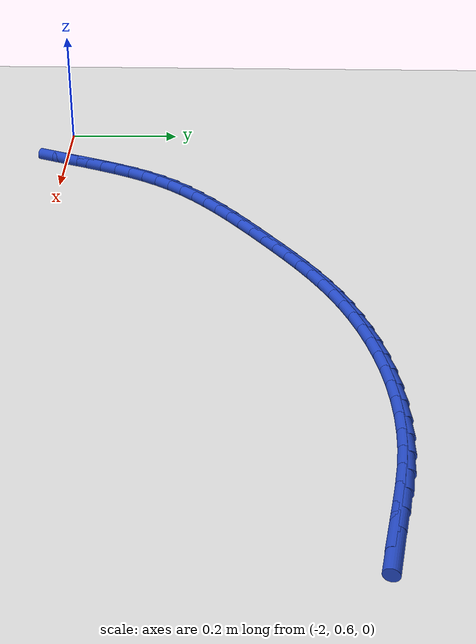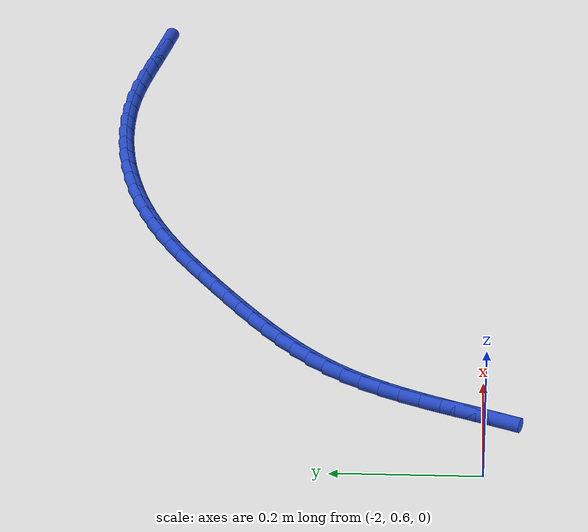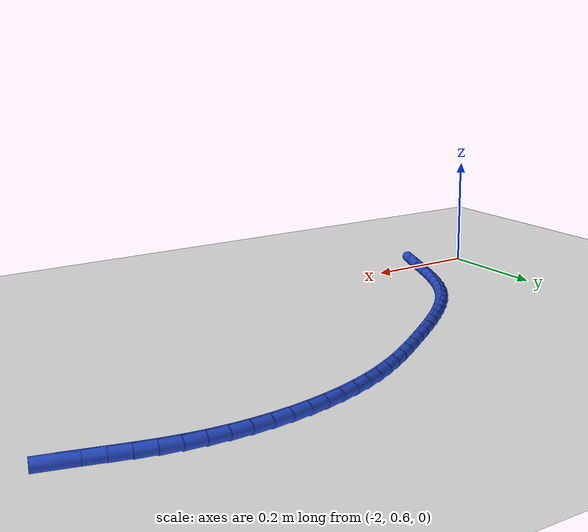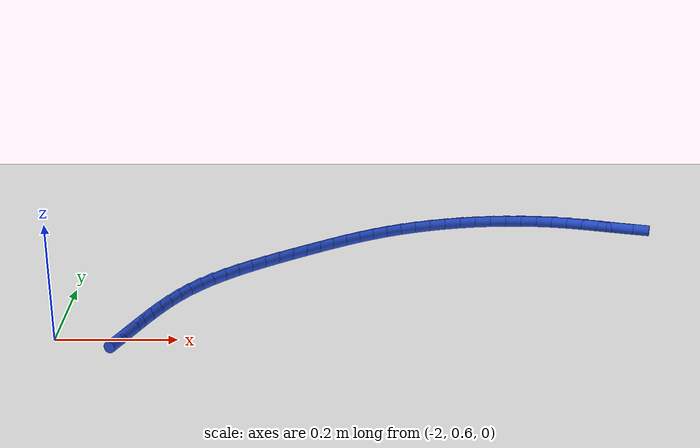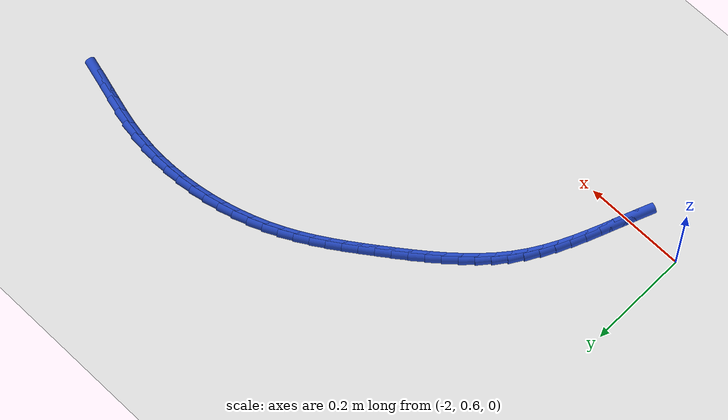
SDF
<sdf version="1.6">
 <world name="default">
  <model name="ground_plane">
   <static>1</static>
   <link name="link">
    <collision name="collision">
     <geometry><plane><normal>0 0 1</normal><size>100 100</size></plane></geometry>
     <surface><friction><ode><mu>100</mu><mu2>50</mu2></ode></friction></surface>
    </collision>
    <visual name="visual">
     <cast_shadows>0</cast_shadows>
     <geometry><plane><normal>0 0 1</normal><size>100 100</size></plane></geometry>
     <material>
      <script><uri>file://media/materials/scripts/gazebo.material</uri><name>Gazebo/WhiteGlow</name></script>
     </material>
    </visual>
   </link>
  </model>
  <model name="line">
   <link name="link_56">
    <pose>-0.9991605360059256 1.0685709062367819 0.01 0 1.57 -0.261275482061968</pose>
    <collision name="collision">
     <geometry><cylinder><radius>0.01</radius><length>0.08</length></cylinder></geometry>
    </collision>
    <visual name="visual">
     <material>
      <script><name>Gazebo/Blue</name><uri>file://media/materials/scripts/gazebo.material</uri></script>
     </material>
     <geometry><cylinder><radius>0.01</radius><length>0.08</length></cylinder></geometry>
    </visual>
   </link>
   <link name="link_57">
    <pose>-1.027527109928054 1.076155780633403 0.01 0 1.57 -0.27086223723599284</pose>
    <collision name="collision">
     <geometry><cylinder><radius>0.01</radius><length>0.08</length></cylinder></geometry>
    </collision>
    <visual name="visual">
     <material>
      <script><name>Gazebo/Blue</name><uri>file://media/materials/scripts/gazebo.material</uri></script>
     </material>
     <geometry><cylinder><radius>0.01</radius><length>0.08</length></cylinder></geometry>
    </visual>
   </link>
   <link name="link_58">
    <pose>-1.0557077634703076 1.0839811715729968 0.01 0 1.57 -0.2602391956867338</pose>
    <collision name="collision">
     <geometry><cylinder><radius>0.01</radius><length>0.08</length></cylinder></geometry>
    </collision>
    <visual name="visual">
     <material>
      <script><name>Gazebo/Blue</name><uri>file://media/materials/scripts/gazebo.material</uri></script>
     </material>
     <geometry><cylinder><radius>0.01</radius><length>0.08</length></cylinder></geometry>
    </visual>
   </link>
   <link name="link_59">
    <pose>-1.0838971966452653 1.0914873884671819 0.01 0 1.57 -0.2293100670139664</pose>
    <collision name="collision">
     <geometry><cylinder><radius>0.01</radius><length>0.08</length></cylinder></geometry>
    </collision>
    <visual name="visual">
     <material>
      <script><name>Gazebo/Blue</name><uri>file://media/materials/scripts/gazebo.material</uri></script>
     </material>
     <geometry><cylinder><radius>0.01</radius><length>0.08</length></cylinder></geometry>
    </visual>
   </link>
   <link name="link_60">
    <pose>-1.1122901094655055 1.0981147407275778 0.01 0 1.57 -0.17846518691543595</pose>
    <collision name="collision">
     <geometry><cylinder><radius>0.01</radius><length>0.08</length></cylinder></geometry>
    </collision>
    <visual name="visual">
     <material>
      <script><name>Gazebo/Blue</name><uri>file://media/materials/scripts/gazebo.material</uri></script>
     </material>
     <geometry><cylinder><radius>0.01</radius><length>0.08</length></cylinder></geometry>
    </visual>
   </link>
   <link name="link_61">
    <pose>-1.1410789186851875 1.1033077909430842 0.01 0 1.57 -0.11678313127290779</pose>
    <collision name="collision">
     <geometry><cylinder><radius>0.01</radius><length>0.08</length></cylinder></geometry>
    </collision>
    <visual name="visual">
     <material>
      <script><name>Gazebo/Blue</name><uri>file://media/materials/scripts/gazebo.material</uri></script>
     </material>
     <geometry><cylinder><radius>0.01</radius><length>0.08</length></cylinder></geometry>
    </visual>
   </link>
   <link name="link_62">
    <pose>-1.1703332564965536 1.1067398206704882 0.01 0 1.57 -0.05682974004054437</pose>
    <collision name="collision">
     <geometry><cylinder><radius>0.01</radius><length>0.08</length></cylinder></geometry>
    </collision>
    <visual name="visual">
     <material>
      <script><name>Gazebo/Blue</name><uri>file://media/materials/scripts/gazebo.material</uri></script>
     </material>
     <geometry><cylinder><radius>0.01</radius><length>0.08</length></cylinder></geometry>
    </visual>
   </link>
   <link name="link_63">
    <pose>-1.1999401894363513 1.1084241886525346 0.01 0 1.57 0.0007477169805035679</pose>
    <collision name="collision">
     <geometry><cylinder><radius>0.01</radius><length>0.08</length></cylinder></geometry>
    </collision>
    <visual name="visual">
     <material>
      <script><name>Gazebo/Blue</name><uri>file://media/materials/scripts/gazebo.material</uri></script>
     </material>
     <geometry><cylinder><radius>0.01</radius><length>0.08</length></cylinder></geometry>
    </visual>
   </link>
   <link name="link_64">
    <pose>-1.2297719516394454 1.10840188293322 0.01 0 1.57 0.056340498772635146</pose>
    <collision name="collision">
     <geometry><cylinder><radius>0.01</radius><length>0.08</length></cylinder></geometry>
    </collision>
    <visual name="visual">
     <material>
      <script><name>Gazebo/Blue</name><uri>file://media/materials/scripts/gazebo.material</uri></script>
     </material>
     <geometry><cylinder><radius>0.01</radius><length>0.08</length></cylinder></geometry>
    </visual>
   </link>
   <link name="link_65">
    <pose>-1.2597007772406996 1.1067138915565402 0.01 0 1.57 0.11034913190805502</pose>
    <collision name="collision">
     <geometry><cylinder><radius>0.01</radius><length>0.08</length></cylinder></geometry>
    </collision>
    <visual name="visual">
     <material>
      <script><name>Gazebo/Blue</name><uri>file://media/materials/scripts/gazebo.material</uri></script>
     </material>
     <geometry><cylinder><radius>0.01</radius><length>0.08</length></cylinder></geometry>
    </visual>
   </link>
   <link name="link_66">
    <pose>-1.2895989003749788 1.1034012025664905 0.01 0 1.57 0.1631781627640172</pose>
    <collision name="collision">
     <geometry><cylinder><radius>0.01</radius><length>0.08</length></cylinder></geometry>
    </collision>
    <visual name="visual">
     <material>
      <script><name>Gazebo/Blue</name><uri>file://media/materials/scripts/gazebo.material</uri></script>
     </material>
     <geometry><cylinder><radius>0.01</radius><length>0.08</length></cylinder></geometry>
    </visual>
   </link>
   <link name="link_67">
    <pose>-1.3193385551771468 1.0985048040070682 0.01 0 1.57 0.21523406301795078</pose>
    <collision name="collision">
     <geometry><cylinder><radius>0.01</radius><length>0.08</length></cylinder></geometry>
    </collision>
    <visual name="visual">
     <material>
      <script><name>Gazebo/Blue</name><uri>file://media/materials/scripts/gazebo.material</uri></script>
     </material>
     <geometry><cylinder><radius>0.01</radius><length>0.08</length></cylinder></geometry>
    </visual>
   </link>
   <link name="link_68">
    <pose>-1.3487919757820679 1.092065683922268 0.01 0 1.57 0.2669253875332461</pose>
    <collision name="collision">
     <geometry><cylinder><radius>0.01</radius><length>0.08</length></cylinder></geometry>
    </collision>
    <visual name="visual">
     <material>
      <script><name>Gazebo/Blue</name><uri>file://media/materials/scripts/gazebo.material</uri></script>
     </material>
     <geometry><cylinder><radius>0.01</radius><length>0.08</length></cylinder></geometry>
    </visual>
   </link>
   <link name="link_69">
    <pose>-1.3778313963246065 1.0841248303560864 0.01 0 1.57 0.3186644273753887</pose>
    <collision name="collision">
     <geometry><cylinder><radius>0.01</radius><length>0.08</length></cylinder></geometry>
    </collision>
    <visual name="visual">
     <material>
      <script><name>Gazebo/Blue</name><uri>file://media/materials/scripts/gazebo.material</uri></script>
     </material>
     <geometry><cylinder><radius>0.01</radius><length>0.08</length></cylinder></geometry>
    </visual>
   </link>
   <link name="link_70">
    <pose>-1.4063290509396273 1.0747232313525197 0.01 0 1.57 0.37086970815158016</pose>
    <collision name="collision">
     <geometry><cylinder><radius>0.01</radius><length>0.08</length></cylinder></geometry>
    </collision>
    <visual name="visual">
     <material>
      <script><name>Gazebo/Blue</name><uri>file://media/materials/scripts/gazebo.material</uri></script>
     </material>
     <geometry><cylinder><radius>0.01</radius><length>0.08</length></cylinder></geometry>
    </visual>
   </link>
   <link name="link_71">
    <pose>-1.4341571737619936 1.063901874955563 0.01 0 1.57 0.4239619686151816</pose>
    <collision name="collision">
     <geometry><cylinder><radius>0.01</radius><length>0.08</length></cylinder></geometry>
    </collision>
    <visual name="visual">
     <material>
      <script><name>Gazebo/Blue</name><uri>file://media/materials/scripts/gazebo.material</uri></script>
     </material>
     <geometry><cylinder><radius>0.01</radius><length>0.08</length></cylinder></geometry>
    </visual>
   </link>
   <link name="link_72">
    <pose>-1.4611882351592367 1.0517018625882941 0.01 0 1.57 0.4761650592670146</pose>
    <collision name="collision">
     <geometry><cylinder><radius>0.01</radius><length>0.08</length></cylinder></geometry>
    </collision>
    <visual name="visual">
     <material>
      <script><name>Gazebo/Blue</name><uri>file://media/materials/scripts/gazebo.material</uri></script>
     </material>
     <geometry><cylinder><radius>0.01</radius><length>0.08</length></cylinder></geometry>
    </visual>
   </link>
   <link name="link_73">
    <pose>-1.4873682767802214 1.038199605965134 0.01 0 1.57 0.5220597661102357</pose>
    <collision name="collision">
     <geometry><cylinder><radius>0.01</radius><length>0.08</length></cylinder></geometry>
    </collision>
    <visual name="visual">
     <material>
      <script><name>Gazebo/Blue</name><uri>file://media/materials/scripts/gazebo.material</uri></script>
     </material>
     <geometry><cylinder><radius>0.01</radius><length>0.08</length></cylinder></geometry>
    </visual>
   </link>
   <link name="link_74">
    <pose>-1.5128208752449372 1.023556724118363 0.01 0 1.57 0.560402124596302</pose>
    <collision name="collision">
     <geometry><cylinder><radius>0.01</radius><length>0.08</length></cylinder></geometry>
    </collision>
    <visual name="visual">
     <material>
      <script><name>Gazebo/Blue</name><uri>file://media/materials/scripts/gazebo.material</uri></script>
     </material>
     <geometry><cylinder><radius>0.01</radius><length>0.08</length></cylinder></geometry>
    </visual>
   </link>
   <link name="link_75">
    <pose>-1.537695850809679 1.007947431626068 0.01 0 1.57 0.5909242713371794</pose>
    <collision name="collision">
     <geometry><cylinder><radius>0.01</radius><length>0.08</length></cylinder></geometry>
    </collision>
    <visual name="visual">
     <material>
      <script><name>Gazebo/Blue</name><uri>file://media/materials/scripts/gazebo.material</uri></script>
     </material>
     <geometry><cylinder><radius>0.01</radius><length>0.08</length></cylinder></geometry>
    </visual>
   </link>
   <link name="link_76">
    <pose>-1.5621430237307432 0.9915459430663336 0.01 0 1.57 0.6135260895638186</pose>
    <collision name="collision">
     <geometry><cylinder><radius>0.01</radius><length>0.08</length></cylinder></geometry>
    </collision>
    <visual name="visual">
     <material>
      <script><name>Gazebo/Blue</name><uri>file://media/materials/scripts/gazebo.material</uri></script>
     </material>
     <geometry><cylinder><radius>0.01</radius><length>0.08</length></cylinder></geometry>
    </visual>
   </link>
   <link name="link_77">
    <pose>-1.586312214264426 0.974526473017246 0.01 0 1.57 0.6282207167447119</pose>
    <collision name="collision">
     <geometry><cylinder><radius>0.01</radius><length>0.08</length></cylinder></geometry>
    </collision>
    <visual name="visual">
     <material>
      <script><name>Gazebo/Blue</name><uri>file://media/materials/scripts/gazebo.material</uri></script>
     </material>
     <geometry><cylinder><radius>0.01</radius><length>0.08</length></cylinder></geometry>
    </visual>
   </link>
   <link name="link_78">
    <pose>-1.6103532426670237 0.9570632360568913 0.01 0 1.57 0.6367864618040242</pose>
    <collision name="collision">
     <geometry><cylinder><radius>0.01</radius><length>0.08</length></cylinder></geometry>
    </collision>
    <visual name="visual">
     <material>
      <script><name>Gazebo/Blue</name><uri>file://media/materials/scripts/gazebo.material</uri></script>
     </material>
     <geometry><cylinder><radius>0.01</radius><length>0.08</length></cylinder></geometry>
    </visual>
   </link>
   <link name="link_79">
    <pose>-1.634374253897405 0.9392982382801193 0.01 0 1.57 0.6490273289431643</pose>
    <collision name="collision">
     <geometry><cylinder><radius>0.01</radius><length>0.08</length></cylinder></geometry>
    </collision>
    <visual name="visual">
     <material>
      <script><name>Gazebo/Blue</name><uri>file://media/materials/scripts/gazebo.material</uri></script>
     </material>
     <geometry><cylinder><radius>0.01</radius><length>0.08</length></cylinder></geometry>
    </visual>
   </link>
   <link name="link_80">
    <pose>-1.6582443184498425 0.9211887186328882 0.01 0 1.57 0.6684858096478538</pose>
    <collision name="collision">
     <geometry><cylinder><radius>0.01</radius><length>0.08</length></cylinder></geometry>
    </collision>
    <visual name="visual">
     <material>
      <script><name>Gazebo/Blue</name><uri>file://media/materials/scripts/gazebo.material</uri></script>
     </material>
     <geometry><cylinder><radius>0.01</radius><length>0.08</length></cylinder></geometry>
    </visual>
   </link>
   <link name="link_81">
    <pose>-1.681747411912061 0.9026261510147082 0.01 0 1.57 0.6953617449787654</pose>
    <collision name="collision">
     <geometry><cylinder><radius>0.01</radius><length>0.08</length></cylinder></geometry>
    </collision>
    <visual name="visual">
     <material>
      <script><name>Gazebo/Blue</name><uri>file://media/materials/scripts/gazebo.material</uri></script>
     </material>
     <geometry><cylinder><radius>0.01</radius><length>0.08</length></cylinder></geometry>
    </visual>
   </link>
   <link name="link_82">
    <pose>-1.7046674065350786 0.8835019294619892 0.01 0 1.57 0.7299552751319586</pose>
    <collision name="collision">
     <geometry><cylinder><radius>0.01</radius><length>0.08</length></cylinder></geometry>
    </collision>
    <visual name="visual">
     <material>
      <script><name>Gazebo/Blue</name><uri>file://media/materials/scripts/gazebo.material</uri></script>
     </material>
     <geometry><cylinder><radius>0.01</radius><length>0.08</length></cylinder></geometry>
    </visual>
   </link>
   <link name="link_83">
    <pose>-1.7267881745699156 0.8637074480111397 0.01 0 1.57 0.7726329690444749</pose>
    <collision name="collision">
     <geometry><cylinder><radius>0.01</radius><length>0.08</length></cylinder></geometry>
    </collision>
    <visual name="visual">
     <material>
      <script><name>Gazebo/Blue</name><uri>file://media/materials/scripts/gazebo.material</uri></script>
     </material>
     <geometry><cylinder><radius>0.01</radius><length>0.08</length></cylinder></geometry>
    </visual>
   </link>
   <link name="link_84">
    <pose>-1.7478935882675917 0.8431341006985702 0.01 0 1.57 0.8237704424098007</pose>
    <collision name="collision">
     <geometry><cylinder><radius>0.01</radius><length>0.08</length></cylinder></geometry>
    </collision>
    <visual name="visual">
     <material>
      <script><name>Gazebo/Blue</name><uri>file://media/materials/scripts/gazebo.material</uri></script>
     </material>
     <geometry><cylinder><radius>0.01</radius><length>0.08</length></cylinder></geometry>
    </visual>
   </link>
   <link name="link_85">
    <pose>-1.7677675198791272 0.8216732815606895 0.01 0 1.57 0.8836681263582641</pose>
    <collision name="collision">
     <geometry><cylinder><radius>0.01</radius><length>0.08</length></cylinder></geometry>
    </collision>
    <visual name="visual">
     <material>
      <script><name>Gazebo/Blue</name><uri>file://media/materials/scripts/gazebo.material</uri></script>
     </material>
     <geometry><cylinder><radius>0.01</radius><length>0.08</length></cylinder></geometry>
    </visual>
   </link>
   <link name="link_86">
    <pose>-1.7861938416555405 0.7992163846339073 0.01 0 1.57 0.9522968374555102</pose>
    <collision name="collision">
     <geometry><cylinder><radius>0.01</radius><length>0.08</length></cylinder></geometry>
    </collision>
    <visual name="visual">
     <material>
      <script><name>Gazebo/Blue</name><uri>file://media/materials/scripts/gazebo.material</uri></script>
     </material>
     <geometry><cylinder><radius>0.01</radius><length>0.08</length></cylinder></geometry>
    </visual>
   </link>
   <link name="link_87">
    <pose>-1.8029599438451607 0.7756567799362104 0.01 0 1.57 1.0219576211036385</pose>
    <collision name="collision">
     <geometry><cylinder><radius>0.01</radius><length>0.08</length></cylinder></geometry>
    </collision>
    <visual name="visual">
     <material>
      <script><name>Gazebo/Blue</name><uri>file://media/materials/scripts/gazebo.material</uri></script>
     </material>
     <geometry><cylinder><radius>0.01</radius><length>0.08</length></cylinder></geometry>
    </visual>
   </link>
   <link name="link_88">
    <pose>-1.8180416440494047 0.7509936729782624 0.01 0 1.57 1.081020506603902</pose>
    <collision name="collision">
     <geometry><cylinder><radius>0.01</radius><length>0.08</length></cylinder></geometry>
    </collision>
    <visual name="visual">
     <material>
      <script><name>Gazebo/Blue</name><uri>file://media/materials/scripts/gazebo.material</uri></script>
     </material>
     <geometry><cylinder><radius>0.01</radius><length>0.08</length></cylinder></geometry>
    </visual>
   </link>
   <link name="link_89">
    <pose>-1.8316944922298206 0.72538338877417 0.01 0 1.57 1.1283461033714643</pose>
    <collision name="collision">
     <geometry><cylinder><radius>0.01</radius><length>0.08</length></cylinder></geometry>
    </collision>
    <visual name="visual">
     <material>
      <script><name>Gazebo/Blue</name><uri>file://media/materials/scripts/gazebo.material</uri></script>
     </material>
     <geometry><cylinder><radius>0.01</radius><length>0.08</length></cylinder></geometry>
    </visual>
   </link>
   <link name="link_90">
    <pose>-1.8441967157962031 0.6989949897610741 0.01 0 1.57 1.1640444125270657</pose>
    <collision name="collision">
     <geometry><cylinder><radius>0.01</radius><length>0.08</length></cylinder></geometry>
    </collision>
    <visual name="visual">
     <material>
      <script><name>Gazebo/Blue</name><uri>file://media/materials/scripts/gazebo.material</uri></script>
     </material>
     <geometry><cylinder><radius>0.01</radius><length>0.08</length></cylinder></geometry>
    </visual>
   </link>
   <link name="link_91">
    <pose>-1.8558265421583466 0.6719975383761173 0.01 0 1.57 1.188384872123106</pose>
    <collision name="collision">
     <geometry><cylinder><radius>0.01</radius><length>0.08</length></cylinder></geometry>
    </collision>
    <visual name="visual">
     <material>
      <script><name>Gazebo/Blue</name><uri>file://media/materials/scripts/gazebo.material</uri></script>
     </material>
     <geometry><cylinder><radius>0.01</radius><length>0.08</length></cylinder></geometry>
    </visual>
   </link>
   <link name="link_92">
    <pose>-1.866862198726045 0.6445600970564404 0.01 0 1.57 1.2016543326451885</pose>
    <collision name="collision">
     <geometry><cylinder><radius>0.01</radius><length>0.08</length></cylinder></geometry>
    </collision>
    <visual name="visual">
     <material>
      <script><name>Gazebo/Blue</name><uri>file://media/materials/scripts/gazebo.material</uri></script>
     </material>
     <geometry><cylinder><radius>0.01</radius><length>0.08</length></cylinder></geometry>
    </visual>
   </link>
   <link name="link_93">
    <pose>-1.8775819129090932 0.6168517282391858 0.01 0 1.57 1.2040687703048787</pose>
    <collision name="collision">
     <geometry><cylinder><radius>0.01</radius><length>0.08</length></cylinder></geometry>
    </collision>
    <visual name="visual">
     <material>
      <script><name>Gazebo/Blue</name><uri>file://media/materials/scripts/gazebo.material</uri></script>
     </material>
     <geometry><cylinder><radius>0.01</radius><length>0.08</length></cylinder></geometry>
    </visual>
   </link>
   <link name="link_94">
    <pose>-1.8882639121172853 0.5890414943614949 0.01 0 1.57 1.1957303149587404</pose>
    <collision name="collision">
     <geometry><cylinder><radius>0.01</radius><length>0.08</length></cylinder></geometry>
    </collision>
    <visual name="visual">
     <material>
      <script><name>Gazebo/Blue</name><uri>file://media/materials/scripts/gazebo.material</uri></script>
     </material>
     <geometry><cylinder><radius>0.01</radius><length>0.08</length></cylinder></geometry>
    </visual>
   </link>
  </model>
 </world>
</sdf>
